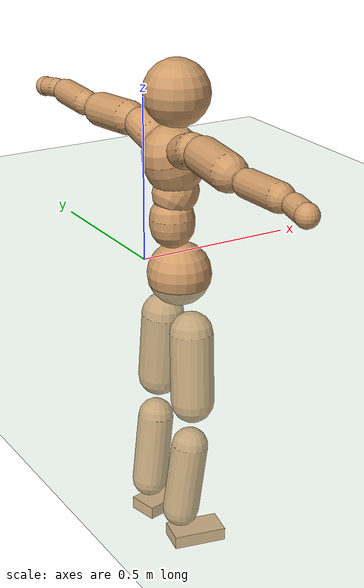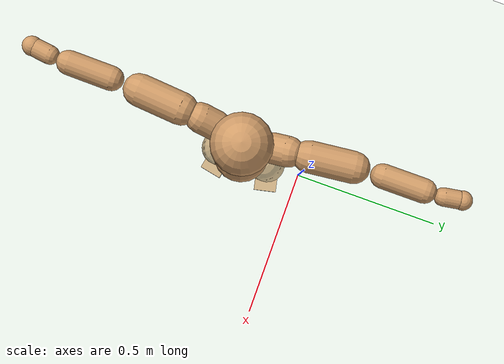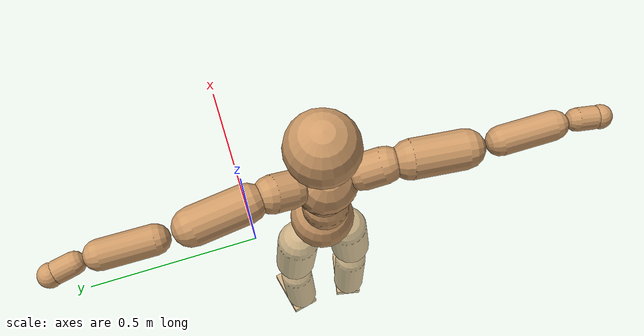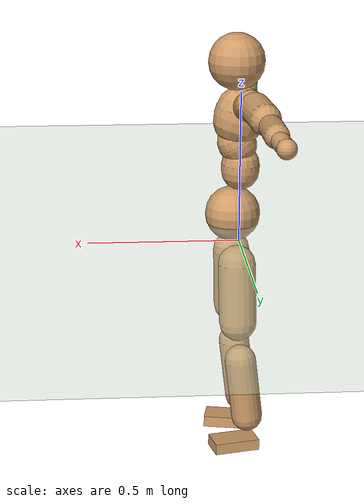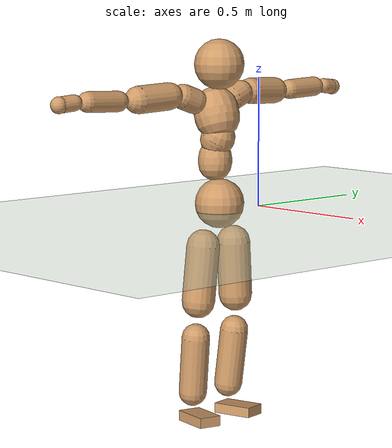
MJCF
<mujoco model="humanoid">
  <compiler coordinate="local"/>
  <default>
    <joint damping="0.0" armature="0.01" stiffness="0.0" limited="true"/>
    <geom conaffinity="1" condim="3" contype="7" margin="0.001" rgba="0.8 0.6 .4 1"/>
  </default>
  <asset>
    <texture type="skybox" builtin="gradient" rgb1=".4 .5 .6" rgb2="0 0 0" width="100" height="100"/>
    <texture builtin="flat" height="1278" mark="cross" markrgb="1 1 1" name="texgeom" random="0.01" rgb1="0.8 0.6 0.4" rgb2="0.8 0.6 0.4" type="cube" width="127"/>
    <texture builtin="checker" height="100" name="texplane" rgb1="0 0 0" rgb2="0.8 0.8 0.8" type="2d" width="100"/>
    <material name="MatPlane" reflectance="0.5" shininess="1" specular="1" texrepeat="60 60" texture="texplane"/>
    <material name="geom" texture="texgeom" texuniform="true"/>
  </asset>
  <worldbody>
    <light cutoff="100" diffuse="1 1 1" dir="-0 0 -1.3" directional="true" exponent="1" pos="0 0 1.3" specular=".1 .1 .1"/>
    <geom conaffinity="1" condim="3" name="floor" pos="0 0 0" rgba="0.8 0.9 0.8 1" size="100 100 .2" type="plane" material="MatPlane"/>
    <body name="Pelvis" pos="0.0001 -0.2075 0.0302">
      <freejoint name="Pelvis"/>
      <geom type="sphere" contype="1" conaffinity="1" density="500" size="0.0947" pos="0.0000 0.0000 0.0000" name="Pelvis"/>
      <body name="L_Hip" pos="-0.0067 0.0752 -0.0885">
        <joint name="L_Hip_x" type="hinge" pos="0 0 0" axis="1 0 0" stiffness="800" damping="80" armature="0.02" range="-180.0000 180.0000"/>
        <joint name="L_Hip_y" type="hinge" pos="0 0 0" axis="0 1 0" stiffness="800" damping="80" armature="0.02" range="-180.0000 180.0000"/>
        <joint name="L_Hip_z" type="hinge" pos="0 0 0" axis="0 0 1" stiffness="800" damping="80" armature="0.02" range="-180.0000 180.0000"/>
        <geom type="capsule" contype="1" conaffinity="1" density="500" fromto="-0.0016 0.0054 -0.0693 -0.0063 0.0216 -0.2772" size="0.0645" name="L_Hip"/>
        <body name="L_Knee" pos="-0.0079 0.027 -0.3466">
          <joint name="L_Knee_x" type="hinge" pos="0 0 0" axis="1 0 0" stiffness="800" damping="80" armature="0.02" range="-180.0000 180.0000"/>
          <joint name="L_Knee_y" type="hinge" pos="0 0 0" axis="0 1 0" stiffness="800" damping="80" armature="0.02" range="-180.0000 180.0000"/>
          <joint name="L_Knee_z" type="hinge" pos="0 0 0" axis="0 0 1" stiffness="800" damping="80" armature="0.02" range="-180.0000 180.0000"/>
          <geom type="capsule" contype="1" conaffinity="1" density="500" fromto="-0.0089 -0.0021 -0.0719 -0.0357 -0.0084 -0.2878" size="0.0542" name="L_Knee"/>
          <body name="L_Ankle" pos="-0.0446 -0.0105 -0.3597">
            <joint name="L_Ankle_x" type="hinge" pos="0 0 0" axis="1 0 0" stiffness="800" damping="80" armature="0.02" range="-180.0000 180.0000"/>
            <joint name="L_Ankle_y" type="hinge" pos="0 0 0" axis="0 1 0" stiffness="800" damping="80" armature="0.02" range="-180.0000 180.0000"/>
            <joint name="L_Ankle_z" type="hinge" pos="0 0 0" axis="0 0 1" stiffness="800" damping="80" armature="0.02" range="-180.0000 180.0000"/>
            <geom type="box" contype="1" conaffinity="1" density="500" pos="0.0549 0.0120 -0.0256" size="0.0795 0.0455 0.0192" quat="0.9942 0.0000 0.0000 0.1074" name="L_Ankle"/>
            <body name="L_Toe" pos="0.1098 0.024 -0.0512">
              <joint name="L_Toe_x" type="hinge" pos="0 0 0" axis="1 0 0" stiffness="500" damping="50" armature="0.02" range="-180.0000 180.0000"/>
              <joint name="L_Toe_y" type="hinge" pos="0 0 0" axis="0 1 0" stiffness="500" damping="50" armature="0.02" range="-180.0000 180.0000"/>
              <joint name="L_Toe_z" type="hinge" pos="0 0 0" axis="0 0 1" stiffness="500" damping="50" armature="0.02" range="-180.0000 180.0000"/>
              <geom type="box" contype="1" conaffinity="1" density="500" pos="0.0000 0.0000 0.0252" size="0.0009 0.0023 0.0009" quat="0.9935 0.0000 0.0000 0.1140" name="L_Toe"/>
            </body>
          </body>
        </body>
      </body>
      <body name="R_Hip" pos="-0.0042 -0.0731 -0.0878">
        <joint name="R_Hip_x" type="hinge" pos="0 0 0" axis="1 0 0" stiffness="800" damping="80" armature="0.02" range="-180.0000 180.0000"/>
        <joint name="R_Hip_y" type="hinge" pos="0 0 0" axis="0 1 0" stiffness="800" damping="80" armature="0.02" range="-180.0000 180.0000"/>
        <joint name="R_Hip_z" type="hinge" pos="0 0 0" axis="0 0 1" stiffness="800" damping="80" armature="0.02" range="-180.0000 180.0000"/>
        <geom type="capsule" contype="1" conaffinity="1" density="500" fromto="-0.0021 -0.0064 -0.0706 -0.0082 -0.0257 -0.2826" size="0.0638" name="R_Hip"/>
        <body name="R_Knee" pos="-0.0103 -0.0321 -0.3532">
          <joint name="R_Knee_x" type="hinge" pos="0 0 0" axis="1 0 0" stiffness="800" damping="80" armature="0.02" range="-180.0000 180.0000"/>
          <joint name="R_Knee_y" type="hinge" pos="0 0 0" axis="0 1 0" stiffness="800" damping="80" armature="0.02" range="-180.0000 180.0000"/>
          <joint name="R_Knee_z" type="hinge" pos="0 0 0" axis="0 0 1" stiffness="800" damping="80" armature="0.02" range="-180.0000 180.0000"/>
          <geom type="capsule" contype="1" conaffinity="1" density="500" fromto="-0.0086 0.0025 -0.0721 -0.0346 0.0102 -0.2886" size="0.0543" name="R_Knee"/>
          <body name="R_Ankle" pos="-0.0432 0.0127 -0.3607">
            <joint name="R_Ankle_x" type="hinge" pos="0 0 0" axis="1 0 0" stiffness="800" damping="80" armature="0.02" range="-180.0000 180.0000"/>
            <joint name="R_Ankle_y" type="hinge" pos="0 0 0" axis="0 1 0" stiffness="800" damping="80" armature="0.02" range="-180.0000 180.0000"/>
            <joint name="R_Ankle_z" type="hinge" pos="0 0 0" axis="0 0 1" stiffness="800" damping="80" armature="0.02" range="-180.0000 180.0000"/>
            <geom type="box" contype="1" conaffinity="1" density="500" pos="0.0566 -0.0113 -0.0223" size="0.0799 0.0446 0.0194" quat="0.9952 0.0000 0.0000 -0.0981" name="R_Ankle"/>
            <body name="R_Toe" pos="0.1132 -0.0225 -0.0447">
              <joint name="R_Toe_x" type="hinge" pos="0 0 0" axis="1 0 0" stiffness="500" damping="50" armature="0.02" range="-180.0000 180.0000"/>
              <joint name="R_Toe_y" type="hinge" pos="0 0 0" axis="0 1 0" stiffness="500" damping="50" armature="0.02" range="-180.0000 180.0000"/>
              <joint name="R_Toe_z" type="hinge" pos="0 0 0" axis="0 0 1" stiffness="500" damping="50" armature="0.02" range="-180.0000 180.0000"/>
              <geom type="box" contype="1" conaffinity="1" density="500" pos="0.0000 0.0000 0.0233" size="0.0009 0.0022 0.001" quat="0.9961 0.0000 0.0000 -0.0881" name="R_Toe"/>
            </body>
          </body>
        </body>
      </body>
      <body name="Torso" pos="-0.0231 -0.0018 0.1015">
        <joint name="Torso_x" type="hinge" pos="0 0 0" axis="1 0 0" stiffness="1000" damping="100" armature="0.02" range="-180.0000 180.0000"/>
        <joint name="Torso_y" type="hinge" pos="0 0 0" axis="0 1 0" stiffness="1000" damping="100" armature="0.02" range="-180.0000 180.0000"/>
        <joint name="Torso_z" type="hinge" pos="0 0 0" axis="0 0 1" stiffness="1000" damping="100" armature="0.02" range="-180.0000 180.0000"/>
        <geom type="capsule" contype="1" conaffinity="1" density="500" fromto="-0.0016 0.0016 0.0737 -0.0011 0.0010 0.0491" size="0.0651" name="Torso"/>
        <body name="Spine" pos="-0.0027 0.0026 0.1228">
          <joint name="Spine_x" type="hinge" pos="0 0 0" axis="1 0 0" stiffness="1000" damping="100" armature="0.02" range="-180.0000 180.0000"/>
          <joint name="Spine_y" type="hinge" pos="0 0 0" axis="0 1 0" stiffness="1000" damping="100" armature="0.02" range="-180.0000 180.0000"/>
          <joint name="Spine_z" type="hinge" pos="0 0 0" axis="0 0 1" stiffness="1000" damping="100" armature="0.02" range="-180.0000 180.0000"/>
          <geom type="capsule" contype="1" conaffinity="1" density="500" fromto="0.0169 0.0010 0.0282 0.0113 0.0007 0.0188" size="0.065379" name="Spine"/>
          <body name="Chest" pos="0.0281 0.0017 0.047">
            <joint name="Chest_x" type="hinge" pos="0 0 0" axis="1 0 0" stiffness="1000" damping="100" armature="0.02" range="-180.0000 180.0000"/>
            <joint name="Chest_y" type="hinge" pos="0 0 0" axis="0 1 0" stiffness="1000" damping="100" armature="0.02" range="-180.0000 180.0000"/>
            <joint name="Chest_z" type="hinge" pos="0 0 0" axis="0 0 1" stiffness="1000" damping="100" armature="0.02" range="-180.0000 180.0000"/>
            <geom type="capsule" contype="1" conaffinity="1" density="500" fromto="-0.0261 -0.0005 0.0863 -0.0174 -0.0003 0.0575" size="0.086769" name="Chest"/>
            <body name="Neck" pos="-0.0542 -0.0008 0.2018">
              <joint name="Neck_x" type="hinge" pos="0 0 0" axis="1 0 0" stiffness="500" damping="50" armature="0.02" range="-180.0000 180.0000"/>
              <joint name="Neck_y" type="hinge" pos="0 0 0" axis="0 1 0" stiffness="500" damping="50" armature="0.02" range="-180.0000 180.0000"/>
              <joint name="Neck_z" type="hinge" pos="0 0 0" axis="0 0 1" stiffness="500" damping="50" armature="0.02" range="-180.0000 180.0000"/>
              <geom type="capsule" contype="1" conaffinity="1" density="500" fromto="0.0090 0.0007 0.0112 0.0360 0.0027 0.0449" size="0.036921" name="Neck"/>
              <body name="Head" pos="0.045 0.0034 0.0562">
                <joint name="Head_x" type="hinge" pos="0 0 0" axis="1 0 0" stiffness="500" damping="50" armature="0.02" range="-180.0000 180.0000"/>
                <joint name="Head_y" type="hinge" pos="0 0 0" axis="0 1 0" stiffness="500" damping="50" armature="0.02" range="-180.0000 180.0000"/>
                <joint name="Head_z" type="hinge" pos="0 0 0" axis="0 0 1" stiffness="500" damping="50" armature="0.02" range="-180.0000 180.0000"/>
                <geom type="sphere" contype="1" conaffinity="1" density="500" size="0.0960" pos="0.0000 0.0000 0.0000" name="Head"/>
              </body>
            </body>
            <body name="L_Thorax" pos="-0.0353 0.0744 0.116">
              <joint name="L_Thorax_x" type="hinge" pos="0 0 0" axis="1 0 0" stiffness="500" damping="50" armature="0.02" range="-180.0000 180.0000"/>
              <joint name="L_Thorax_y" type="hinge" pos="0 0 0" axis="0 1 0" stiffness="500" damping="50" armature="0.02" range="-180.0000 180.0000"/>
              <joint name="L_Thorax_z" type="hinge" pos="0 0 0" axis="0 0 1" stiffness="500" damping="50" armature="0.02" range="-180.0000 180.0000"/>
              <geom type="capsule" contype="1" conaffinity="1" density="500" fromto="-0.0015 0.0168 0.0062 -0.0059 0.0672 0.0250" size="0.049" name="L_Thorax"/>
              <body name="L_Shoulder" pos="-0.0074 0.0841 0.0312">
                <joint name="L_Shoulder_x" type="hinge" pos="0 0 0" axis="1 0 0" stiffness="500" damping="50" armature="0.02" range="-720.0000 720.0000"/>
                <joint name="L_Shoulder_y" type="hinge" pos="0 0 0" axis="0 1 0" stiffness="500" damping="50" armature="0.02" range="-720.0000 720.0000"/>
                <joint name="L_Shoulder_z" type="hinge" pos="0 0 0" axis="0 0 1" stiffness="500" damping="50" armature="0.02" range="-720.0000 720.0000"/>
                <geom type="capsule" contype="1" conaffinity="1" density="500" fromto="-0.0052 0.0472 -0.0018 -0.0207 0.1888 -0.0074" size="0.051" name="L_Shoulder"/>
                <body name="L_Elbow" pos="-0.0259 0.236 -0.0092">
                  <joint name="L_Elbow_x" type="hinge" pos="0 0 0" axis="1 0 0" stiffness="500" damping="50" armature="0.02" range="-720.0000 720.0000"/>
                  <joint name="L_Elbow_y" type="hinge" pos="0 0 0" axis="0 1 0" stiffness="500" damping="50" armature="0.02" range="-720.0000 720.0000"/>
                  <joint name="L_Elbow_z" type="hinge" pos="0 0 0" axis="0 0 1" stiffness="500" damping="50" armature="0.02" range="-720.0000 720.0000"/>
                  <geom type="capsule" contype="1" conaffinity="1" density="500" fromto="0.0002 0.0451 0.0016 0.0006 0.1804 0.0065" size="0.0388" name="L_Elbow"/>
                  <body name="L_Wrist" pos="0.0008 0.2256 0.0081">
                    <joint name="L_Wrist_x" type="hinge" pos="0 0 0" axis="1 0 0" stiffness="300" damping="30" armature="0.02" range="-180.0000 180.0000"/>
                    <joint name="L_Wrist_y" type="hinge" pos="0 0 0" axis="0 1 0" stiffness="300" damping="30" armature="0.02" range="-180.0000 180.0000"/>
                    <joint name="L_Wrist_z" type="hinge" pos="0 0 0" axis="0 0 1" stiffness="300" damping="30" armature="0.02" range="-180.0000 180.0000"/>
                    <geom type="capsule" contype="1" conaffinity="1" density="500" fromto="-0.0025 0.0153 -0.0019 -0.0101 0.0613 -0.0074" size="0.0293" name="L_Wrist"/>
                    <body name="L_Hand" pos="-0.0126 0.0766 -0.0093">
                      <joint name="L_Hand_x" type="hinge" pos="0 0 0" axis="1 0 0" stiffness="300" damping="30" armature="0.02" range="-180.0000 180.0000"/>
                      <joint name="L_Hand_y" type="hinge" pos="0 0 0" axis="0 1 0" stiffness="300" damping="30" armature="0.02" range="-180.0000 180.0000"/>
                      <joint name="L_Hand_z" type="hinge" pos="0 0 0" axis="0 0 1" stiffness="300" damping="30" armature="0.02" range="-180.0000 180.0000"/>
                      <geom type="sphere" contype="1" conaffinity="1" density="500" size="0.0310" pos="0.0000 0.0000 0.0000" name="L_Hand"/>
                    </body>
                  </body>
                </body>
              </body>
            </body>
            <body name="R_Thorax" pos="-0.041 -0.0761 0.1139">
              <joint name="R_Thorax_x" type="hinge" pos="0 0 0" axis="1 0 0" stiffness="500" damping="50" armature="0.02" range="-180.0000 180.0000"/>
              <joint name="R_Thorax_y" type="hinge" pos="0 0 0" axis="0 1 0" stiffness="500" damping="50" armature="0.02" range="-180.0000 180.0000"/>
              <joint name="R_Thorax_z" type="hinge" pos="0 0 0" axis="0 0 1" stiffness="500" damping="50" armature="0.02" range="-180.0000 180.0000"/>
              <geom type="capsule" contype="1" conaffinity="1" density="500" fromto="-0.0021 -0.0178 0.0066 -0.0082 -0.0710 0.0262" size="0.0481" name="R_Thorax"/>
              <body name="R_Shoulder" pos="-0.0103 -0.0888 0.0328">
                <joint name="R_Shoulder_x" type="hinge" pos="0 0 0" axis="1 0 0" stiffness="500" damping="50" armature="0.02" range="-720.0000 720.0000"/>
                <joint name="R_Shoulder_y" type="hinge" pos="0 0 0" axis="0 1 0" stiffness="500" damping="50" armature="0.02" range="-720.0000 720.0000"/>
                <joint name="R_Shoulder_z" type="hinge" pos="0 0 0" axis="0 0 1" stiffness="500" damping="50" armature="0.02" range="-720.0000 720.0000"/>
                <geom type="capsule" contype="1" conaffinity="1" density="500" fromto="-0.0039 -0.0469 -0.0023 -0.0157 -0.1875 -0.0093" size="0.0521" name="R_Shoulder"/>
                <body name="R_Elbow" pos="-0.0196 -0.2343 -0.0116">
                  <joint name="R_Elbow_x" type="hinge" pos="0 0 0" axis="1 0 0" stiffness="500" damping="50" armature="0.02" range="-720.0000 720.0000"/>
                  <joint name="R_Elbow_y" type="hinge" pos="0 0 0" axis="0 1 0" stiffness="500" damping="50" armature="0.02" range="-720.0000 720.0000"/>
                  <joint name="R_Elbow_z" type="hinge" pos="0 0 0" axis="0 0 1" stiffness="500" damping="50" armature="0.02" range="-720.0000 720.0000"/>
                  <geom type="capsule" contype="1" conaffinity="1" density="500" fromto="-0.0005 -0.0467 0.0016 -0.0021 -0.1867 0.0064" size="0.0388" name="R_Elbow"/>
                  <body name="R_Wrist" pos="-0.0026 -0.2334 0.008">
                    <joint name="R_Wrist_x" type="hinge" pos="0 0 0" axis="1 0 0" stiffness="300" damping="30" armature="0.02" range="-180.0000 180.0000"/>
                    <joint name="R_Wrist_y" type="hinge" pos="0 0 0" axis="0 1 0" stiffness="300" damping="30" armature="0.02" range="-180.0000 180.0000"/>
                    <joint name="R_Wrist_z" type="hinge" pos="0 0 0" axis="0 0 1" stiffness="300" damping="30" armature="0.02" range="-180.0000 180.0000"/>
                    <geom type="capsule" contype="1" conaffinity="1" density="500" fromto="-0.0020 -0.0156 -0.0014 -0.0081 -0.0622 -0.0056" size="0.0301" name="R_Wrist"/>
                    <body name="R_Hand" pos="-0.0102 -0.0778 -0.007">
                      <joint name="R_Hand_x" type="hinge" pos="0 0 0" axis="1 0 0" stiffness="300" damping="30" armature="0.02" range="-180.0000 180.0000"/>
                      <joint name="R_Hand_y" type="hinge" pos="0 0 0" axis="0 1 0" stiffness="300" damping="30" armature="0.02" range="-180.0000 180.0000"/>
                      <joint name="R_Hand_z" type="hinge" pos="0 0 0" axis="0 0 1" stiffness="300" damping="30" armature="0.02" range="-180.0000 180.0000"/>
                      <geom type="sphere" contype="1" conaffinity="1" density="500" size="0.0314" pos="0.0000 0.0000 0.0000" name="R_Hand"/>
                    </body>
                  </body>
                </body>
              </body>
            </body>
          </body>
        </body>
      </body>
    </body>
  </worldbody>
  <actuator>
    <motor name="L_Hip_x" joint="L_Hip_x" gear="500"/>
    <motor name="L_Hip_y" joint="L_Hip_y" gear="500"/>
    <motor name="L_Hip_z" joint="L_Hip_z" gear="500"/>
    <motor name="L_Knee_x" joint="L_Knee_x" gear="500"/>
    <motor name="L_Knee_y" joint="L_Knee_y" gear="500"/>
    <motor name="L_Knee_z" joint="L_Knee_z" gear="500"/>
    <motor name="L_Ankle_x" joint="L_Ankle_x" gear="500"/>
    <motor name="L_Ankle_y" joint="L_Ankle_y" gear="500"/>
    <motor name="L_Ankle_z" joint="L_Ankle_z" gear="500"/>
    <motor name="L_Toe_x" joint="L_Toe_x" gear="500"/>
    <motor name="L_Toe_y" joint="L_Toe_y" gear="500"/>
    <motor name="L_Toe_z" joint="L_Toe_z" gear="500"/>
    <motor name="R_Hip_x" joint="R_Hip_x" gear="500"/>
    <motor name="R_Hip_y" joint="R_Hip_y" gear="500"/>
    <motor name="R_Hip_z" joint="R_Hip_z" gear="500"/>
    <motor name="R_Knee_x" joint="R_Knee_x" gear="500"/>
    <motor name="R_Knee_y" joint="R_Knee_y" gear="500"/>
    <motor name="R_Knee_z" joint="R_Knee_z" gear="500"/>
    <motor name="R_Ankle_x" joint="R_Ankle_x" gear="500"/>
    <motor name="R_Ankle_y" joint="R_Ankle_y" gear="500"/>
    <motor name="R_Ankle_z" joint="R_Ankle_z" gear="500"/>
    <motor name="R_Toe_x" joint="R_Toe_x" gear="500"/>
    <motor name="R_Toe_y" joint="R_Toe_y" gear="500"/>
    <motor name="R_Toe_z" joint="R_Toe_z" gear="500"/>
    <motor name="Torso_x" joint="Torso_x" gear="500"/>
    <motor name="Torso_y" joint="Torso_y" gear="500"/>
    <motor name="Torso_z" joint="Torso_z" gear="500"/>
    <motor name="Spine_x" joint="Spine_x" gear="500"/>
    <motor name="Spine_y" joint="Spine_y" gear="500"/>
    <motor name="Spine_z" joint="Spine_z" gear="500"/>
    <motor name="Chest_x" joint="Chest_x" gear="500"/>
    <motor name="Chest_y" joint="Chest_y" gear="500"/>
    <motor name="Chest_z" joint="Chest_z" gear="500"/>
    <motor name="Neck_x" joint="Neck_x" gear="500"/>
    <motor name="Neck_y" joint="Neck_y" gear="500"/>
    <motor name="Neck_z" joint="Neck_z" gear="500"/>
    <motor name="Head_x" joint="Head_x" gear="500"/>
    <motor name="Head_y" joint="Head_y" gear="500"/>
    <motor name="Head_z" joint="Head_z" gear="500"/>
    <motor name="L_Thorax_x" joint="L_Thorax_x" gear="500"/>
    <motor name="L_Thorax_y" joint="L_Thorax_y" gear="500"/>
    <motor name="L_Thorax_z" joint="L_Thorax_z" gear="500"/>
    <motor name="L_Shoulder_x" joint="L_Shoulder_x" gear="500"/>
    <motor name="L_Shoulder_y" joint="L_Shoulder_y" gear="500"/>
    <motor name="L_Shoulder_z" joint="L_Shoulder_z" gear="500"/>
    <motor name="L_Elbow_x" joint="L_Elbow_x" gear="500"/>
    <motor name="L_Elbow_y" joint="L_Elbow_y" gear="500"/>
    <motor name="L_Elbow_z" joint="L_Elbow_z" gear="500"/>
    <motor name="L_Wrist_x" joint="L_Wrist_x" gear="500"/>
    <motor name="L_Wrist_y" joint="L_Wrist_y" gear="500"/>
    <motor name="L_Wrist_z" joint="L_Wrist_z" gear="500"/>
    <motor name="L_Hand_x" joint="L_Hand_x" gear="500"/>
    <motor name="L_Hand_y" joint="L_Hand_y" gear="500"/>
    <motor name="L_Hand_z" joint="L_Hand_z" gear="500"/>
    <motor name="R_Thorax_x" joint="R_Thorax_x" gear="500"/>
    <motor name="R_Thorax_y" joint="R_Thorax_y" gear="500"/>
    <motor name="R_Thorax_z" joint="R_Thorax_z" gear="500"/>
    <motor name="R_Shoulder_x" joint="R_Shoulder_x" gear="500"/>
    <motor name="R_Shoulder_y" joint="R_Shoulder_y" gear="500"/>
    <motor name="R_Shoulder_z" joint="R_Shoulder_z" gear="500"/>
    <motor name="R_Elbow_x" joint="R_Elbow_x" gear="500"/>
    <motor name="R_Elbow_y" joint="R_Elbow_y" gear="500"/>
    <motor name="R_Elbow_z" joint="R_Elbow_z" gear="500"/>
    <motor name="R_Wrist_x" joint="R_Wrist_x" gear="500"/>
    <motor name="R_Wrist_y" joint="R_Wrist_y" gear="500"/>
    <motor name="R_Wrist_z" joint="R_Wrist_z" gear="500"/>
    <motor name="R_Hand_x" joint="R_Hand_x" gear="500"/>
    <motor name="R_Hand_y" joint="R_Hand_y" gear="500"/>
    <motor name="R_Hand_z" joint="R_Hand_z" gear="500"/>
  </actuator>
  <contact>
    <exclude body1="Torso" body2="Chest"/>
    <exclude body1="Head" body2="Chest"/>
    <exclude body1="R_Knee" body2="R_Toe"/>
    <exclude body1="R_Knee" body2="L_Ankle"/>
    <exclude body1="R_Knee" body2="L_Toe"/>
    <exclude body1="L_Knee" body2="L_Toe"/>
    <exclude body1="L_Knee" body2="R_Ankle"/>
    <exclude body1="L_Knee" body2="R_Toe"/>
    <exclude body1="L_Shoulder" body2="Chest"/>
    <exclude body1="R_Shoulder" body2="Chest"/>
  </contact>
  <sensor/>
  <size njmax="700" nconmax="700"/>
</mujoco>
